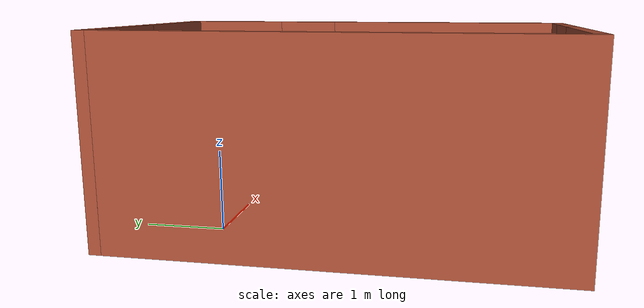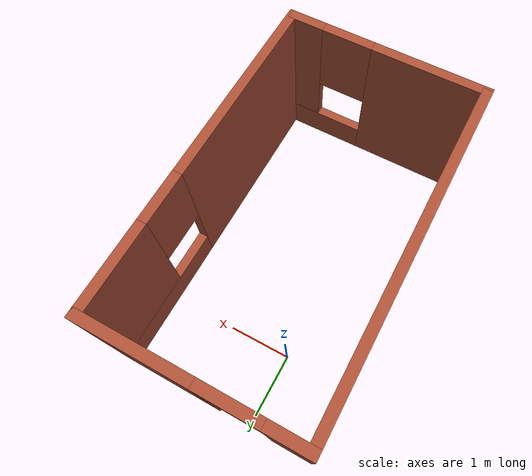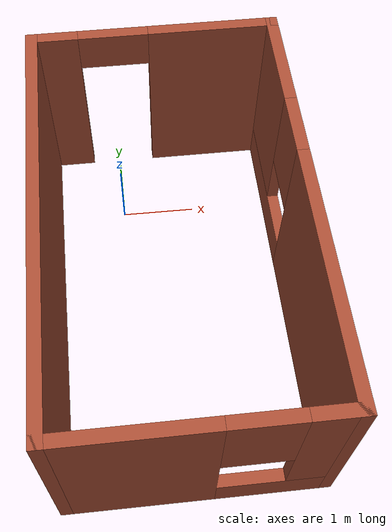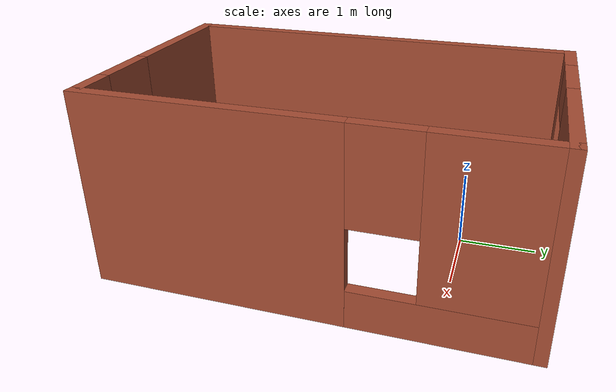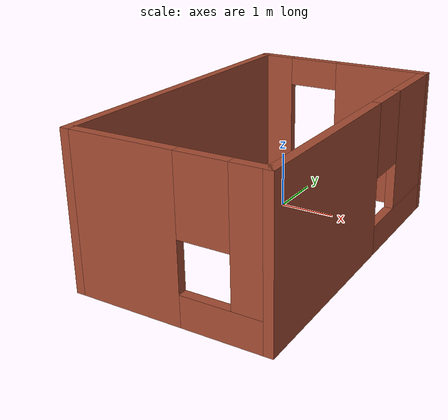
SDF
<?xml version='1.0'?>
<sdf version='1.7'>
  <model name='Building'>
    <pose>0.57 -1.52531 0 0 -0 0</pose>
    <link name='Wall_0'>
      <pose>0 -2.63469 0 0 -0 0</pose>
      <visual name='Wall_0_Visual_0'>
        <pose>-0.7075 0 1.25 0 -0 0</pose>
        <geometry>
          <box>
            <size>1.835 0.15 2.5</size>
          </box>
        </geometry>
        <material>
          <script>
            <uri>file://media/materials/scripts/gazebo.material</uri>
            <name>Gazebo/Bricks</name>
          </script>
          <ambient>1 1 1 1</ambient>
        </material>
        <meta>
          <layer>0</layer>
        </meta>
      </visual>
      <collision name='Wall_0_Collision_0'>
        <geometry>
          <box>
            <size>1.835 0.15 2.5</size>
          </box>
        </geometry>
        <pose>-0.7075 0 1.25 0 -0 0</pose>
      </collision>
      <visual name='Wall_0_Visual_1'>
        <pose>0.9175 0 0.25 0 -0 0</pose>
        <geometry>
          <box>
            <size>1.415 0.15 0.5</size>
          </box>
        </geometry>
        <material>
          <script>
            <uri>file://media/materials/scripts/gazebo.material</uri>
            <name>Gazebo/Bricks</name>
          </script>
          <ambient>1 1 1 1</ambient>
        </material>
        <meta>
          <layer>0</layer>
        </meta>
      </visual>
      <collision name='Wall_0_Collision_1'>
        <geometry>
          <box>
            <size>1.415 0.15 0.5</size>
          </box>
        </geometry>
        <pose>0.9175 0 0.25 0 -0 0</pose>
      </collision>
      <visual name='Wall_0_Visual_2'>
        <pose>1.3175 0 1.5 0 -0 0</pose>
        <geometry>
          <box>
            <size>0.615 0.15 2</size>
          </box>
        </geometry>
        <material>
          <script>
            <uri>file://media/materials/scripts/gazebo.material</uri>
            <name>Gazebo/Bricks</name>
          </script>
          <ambient>1 1 1 1</ambient>
        </material>
        <meta>
          <layer>0</layer>
        </meta>
      </visual>
      <collision name='Wall_0_Collision_2'>
        <geometry>
          <box>
            <size>0.615 0.15 2</size>
          </box>
        </geometry>
        <pose>1.3175 0 1.5 0 -0 0</pose>
      </collision>
      <visual name='Wall_0_Visual_3'>
        <pose>0.61 0 1.9 0 -0 0</pose>
        <geometry>
          <box>
            <size>0.8 0.15 1.2</size>
          </box>
        </geometry>
        <material>
          <script>
            <uri>file://media/materials/scripts/gazebo.material</uri>
            <name>Gazebo/Bricks</name>
          </script>
          <ambient>1 1 1 1</ambient>
        </material>
        <meta>
          <layer>0</layer>
        </meta>
      </visual>
      <collision name='Wall_0_Collision_3'>
        <geometry>
          <box>
            <size>0.8 0.15 1.2</size>
          </box>
        </geometry>
        <pose>0.61 0 1.9 0 -0 0</pose>
      </collision>
    </link>
    <link name='Wall_1'>
      <pose>1.55 -0 0 0 -0 1.5708</pose>
      <visual name='Wall_1_Visual_0'>
        <pose>-1.1075 0 1.25 0 -0 0</pose>
        <geometry>
          <box>
            <size>3.20444 0.15 2.5</size>
          </box>
        </geometry>
        <material>
          <script>
            <uri>file://media/materials/scripts/gazebo.material</uri>
            <name>Gazebo/Bricks</name>
          </script>
          <ambient>1 1 1 1</ambient>
        </material>
        <meta>
          <layer>0</layer>
        </meta>
      </visual>
      <collision name='Wall_1_Collision_0'>
        <geometry>
          <box>
            <size>3.20444 0.15 2.5</size>
          </box>
        </geometry>
        <pose>-1.1075 0 1.25 0 -0 0</pose>
      </collision>
      <visual name='Wall_1_Visual_1'>
        <pose>1.60222 0 0.25 0 -0 0</pose>
        <geometry>
          <box>
            <size>2.21499 0.15 0.5</size>
          </box>
        </geometry>
        <material>
          <script>
            <uri>file://media/materials/scripts/gazebo.material</uri>
            <name>Gazebo/Bricks</name>
          </script>
          <ambient>1 1 1 1</ambient>
        </material>
        <meta>
          <layer>0</layer>
        </meta>
      </visual>
      <collision name='Wall_1_Collision_1'>
        <geometry>
          <box>
            <size>2.21499 0.15 0.5</size>
          </box>
        </geometry>
        <pose>1.60222 0 0.25 0 -0 0</pose>
      </collision>
      <visual name='Wall_1_Visual_2'>
        <pose>2.00222 0 1.5 0 -0 0</pose>
        <geometry>
          <box>
            <size>1.41499 0.15 2</size>
          </box>
        </geometry>
        <material>
          <script>
            <uri>file://media/materials/scripts/gazebo.material</uri>
            <name>Gazebo/Bricks</name>
          </script>
          <ambient>1 1 1 1</ambient>
        </material>
        <meta>
          <layer>0</layer>
        </meta>
      </visual>
      <collision name='Wall_1_Collision_2'>
        <geometry>
          <box>
            <size>1.41499 0.15 2</size>
          </box>
        </geometry>
        <pose>2.00222 0 1.5 0 -0 0</pose>
      </collision>
      <visual name='Wall_1_Visual_3'>
        <pose>0.894725 0 1.9 0 -0 0</pose>
        <geometry>
          <box>
            <size>0.8 0.15 1.2</size>
          </box>
        </geometry>
        <material>
          <script>
            <uri>file://media/materials/scripts/gazebo.material</uri>
            <name>Gazebo/Bricks</name>
          </script>
          <ambient>1 1 1 1</ambient>
        </material>
        <meta>
          <layer>0</layer>
        </meta>
      </visual>
      <collision name='Wall_1_Collision_3'>
        <geometry>
          <box>
            <size>0.8 0.15 1.2</size>
          </box>
        </geometry>
        <pose>0.894725 0 1.9 0 -0 0</pose>
      </collision>
    </link>
    <link name='Wall_2'>
      <pose>0 2.63469 0 0 -0 3.14159</pose>
      <visual name='Wall_2_Visual_0'>
        <pose>-0.781353 0 1.25 0 -0 0</pose>
        <geometry>
          <box>
            <size>1.68729 0.15 2.5</size>
          </box>
        </geometry>
        <material>
          <script>
            <uri>file://media/materials/scripts/gazebo.material</uri>
            <name>Gazebo/Bricks</name>
          </script>
          <ambient>1 1 1 1</ambient>
        </material>
        <meta>
          <layer>0</layer>
        </meta>
      </visual>
      <collision name='Wall_2_Collision_0'>
        <geometry>
          <box>
            <size>1.68729 0.15 2.5</size>
          </box>
        </geometry>
        <pose>-0.781353 0 1.25 0 -0 0</pose>
      </collision>
      <visual name='Wall_2_Visual_1'>
        <pose>1.29365 0 1.25 0 -0 0</pose>
        <geometry>
          <box>
            <size>0.662706 0.15 2.5</size>
          </box>
        </geometry>
        <material>
          <script>
            <uri>file://media/materials/scripts/gazebo.material</uri>
            <name>Gazebo/Bricks</name>
          </script>
          <ambient>1 1 1 1</ambient>
        </material>
        <meta>
          <layer>0</layer>
        </meta>
      </visual>
      <collision name='Wall_2_Collision_1'>
        <geometry>
          <box>
            <size>0.662706 0.15 2.5</size>
          </box>
        </geometry>
        <pose>1.29365 0 1.25 0 -0 0</pose>
      </collision>
      <visual name='Wall_2_Visual_2'>
        <pose>0.512294 0 2.25 0 -0 0</pose>
        <geometry>
          <box>
            <size>0.9 0.15 0.5</size>
          </box>
        </geometry>
        <material>
          <script>
            <uri>file://media/materials/scripts/gazebo.material</uri>
            <name>Gazebo/Bricks</name>
          </script>
          <ambient>1 1 1 1</ambient>
        </material>
        <meta>
          <layer>0</layer>
        </meta>
      </visual>
      <collision name='Wall_2_Collision_2'>
        <geometry>
          <box>
            <size>0.9 0.15 0.5</size>
          </box>
        </geometry>
        <pose>0.512294 0 2.25 0 -0 0</pose>
      </collision>
    </link>
    <link name='Wall_3'>
      <collision name='Wall_3_Collision'>
        <geometry>
          <box>
            <size>5.41944 0.15 2.5</size>
          </box>
        </geometry>
        <pose>0 0 1.25 0 -0 0</pose>
      </collision>
      <visual name='Wall_3_Visual'>
        <pose>0 0 1.25 0 -0 0</pose>
        <geometry>
          <box>
            <size>5.41944 0.15 2.5</size>
          </box>
        </geometry>
        <material>
          <script>
            <uri>file://media/materials/scripts/gazebo.material</uri>
            <name>Gazebo/Bricks</name>
          </script>
          <ambient>1 1 1 1</ambient>
        </material>
        <meta>
          <layer>0</layer>
        </meta>
      </visual>
      <pose>-1.55 -0 0 0 -0 -1.5708</pose>
    </link>
    <static>1</static>
  </model>
</sdf>
